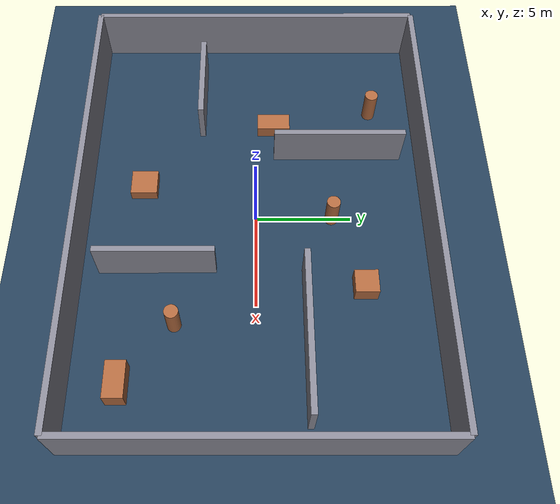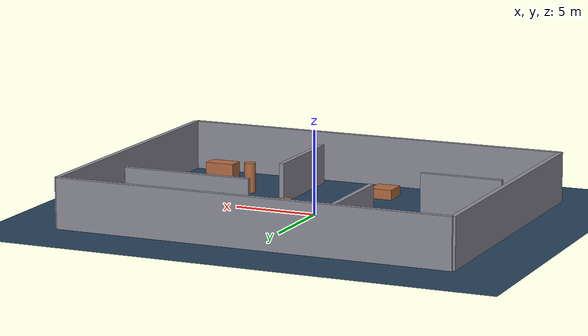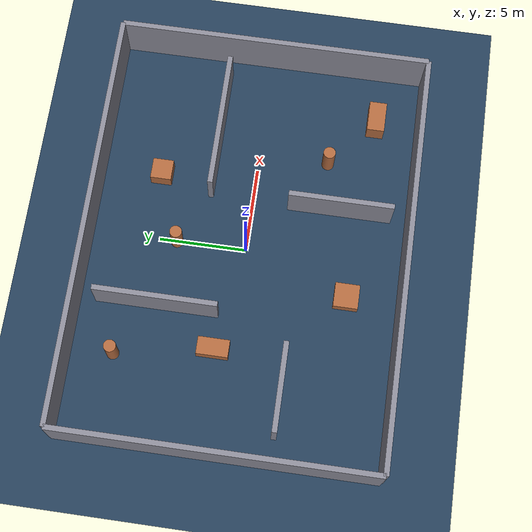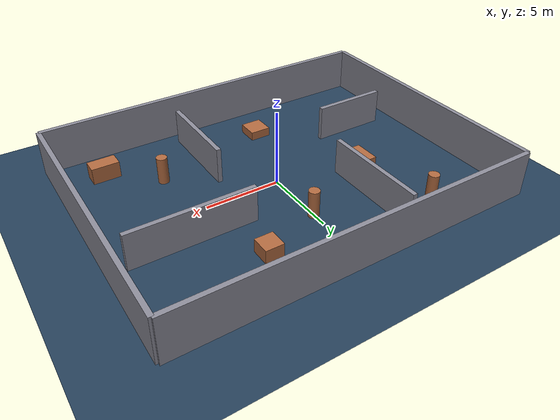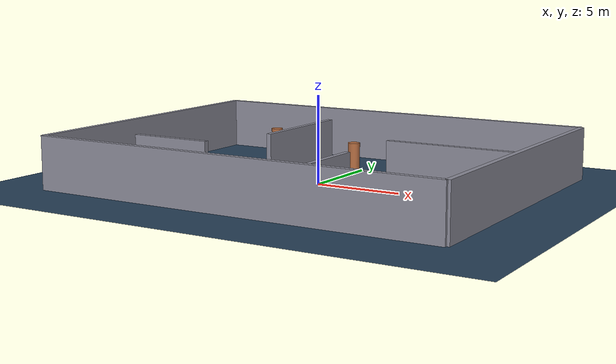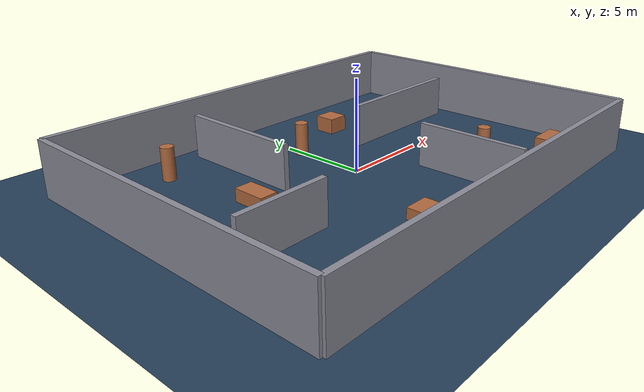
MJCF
<mujoco model="nav world">
  <option timestep="0.005" iterations="20" ls_iterations="20" integrator="implicitfast"/>

  <statistic center="0 0 0.3" extent="6"/>

  <visual>
    <headlight diffuse="0.6 0.6 0.6" ambient="0.35 0.35 0.35" specular="0 0 0"/>
    <rgba haze="0.15 0.25 0.35 1"/>
    <global azimuth="-130" elevation="-20"/>
  </visual>

  <asset>
    <texture type="skybox" builtin="gradient" rgb1="0.3 0.5 0.7" rgb2="0 0 0" width="512" height="3072"/>
    <texture type="2d" name="groundplane" builtin="checker" mark="edge" rgb1="0.2 0.3 0.4"
      rgb2="0.1 0.2 0.3" markrgb="0.8 0.8 0.8" width="300" height="300"/>
    <material name="groundplane" texture="groundplane" texuniform="true" texrepeat="5 5" reflectance="0.2"/>
    <material name="wall" rgba="0.55 0.55 0.60 1"/>
    <material name="obstacle" rgba="0.70 0.42 0.25 1"/>
  </asset>

  <default>
    <default class="world">
      <geom group="0" condim="3" friction="0.9 0.005 0.0001" mass="0" density="0"/>
    </default>
  </default>

  <worldbody>
    <light pos="0 0 6" dir="0 0 -1" directional="true"/>
    <light pos="8 8 6" dir="-1 -1 -1" directional="true"/>
    <geom name="floor" size="0 0 0.05" type="plane" material="groundplane" class="world"/>

    <!-- 24 x 18 m hall: closed walls give slam_toolbox and KISS-ICP loop-closure structure. -->
    <body name="walls">
      <geom name="wall_n" type="box" size="12 0.15 1.5" pos="0  9 1.5" material="wall" class="world"/>
      <geom name="wall_s" type="box" size="12 0.15 1.5" pos="0 -9 1.5" material="wall" class="world"/>
      <geom name="wall_e" type="box" size="0.15 9 1.5" pos=" 12 0 1.5" material="wall" class="world"/>
      <geom name="wall_w" type="box" size="0.15 9 1.5" pos="-12 0 1.5" material="wall" class="world"/>
    </body>

    <!-- Interior structure: corridors and rooms, so the 2D map is not a bare rectangle. -->
    <body name="partitions">
      <geom name="part_1" type="box" size="0.15 3.5 1.2" pos="-4  4.5 1.2" material="wall" class="world"/>
      <geom name="part_2" type="box" size="0.15 3.0 1.2" pos=" 3 -5.0 1.2" material="wall" class="world"/>
      <geom name="part_3" type="box" size="4.0 0.15 1.2" pos=" 7  2.5 1.2" material="wall" class="world"/>
      <geom name="part_4" type="box" size="2.5 0.15 1.2" pos="-8 -3.0 1.2" material="wall" class="world"/>
    </body>

    <!-- Free-standing obstacles at torso height for the costmap.  Keep the area
         around the origin clear: that is where the robot spawns. -->
    <body name="obstacles">
      <geom name="pillar_1" type="cylinder" size="0.35 0.9" pos=" 0.0  4.0 0.9" material="obstacle" class="world"/>
      <geom name="pillar_2" type="cylinder" size="0.35 0.9" pos=" 6.0 -4.0 0.9" material="obstacle" class="world"/>
      <geom name="pillar_3" type="cylinder" size="0.35 0.9" pos="-7.0  6.5 0.9" material="obstacle" class="world"/>
      <geom name="crate_1"  type="box" size="0.6 0.6 0.45" pos=" 4.0  5.5 0.45" material="obstacle" class="world"/>
      <geom name="crate_2"  type="box" size="0.5 0.9 0.35" pos="-6.0  1.0 0.35" material="obstacle" class="world"/>
      <geom name="crate_3"  type="box" size="0.9 0.5 0.55" pos=" 9.0 -6.5 0.55" material="obstacle" class="world"/>
      <geom name="crate_4"  type="box" size="0.7 0.7 0.30" pos="-2.0 -6.0 0.30" material="obstacle" class="world"/>
    </body>
  </worldbody>
</mujoco>
